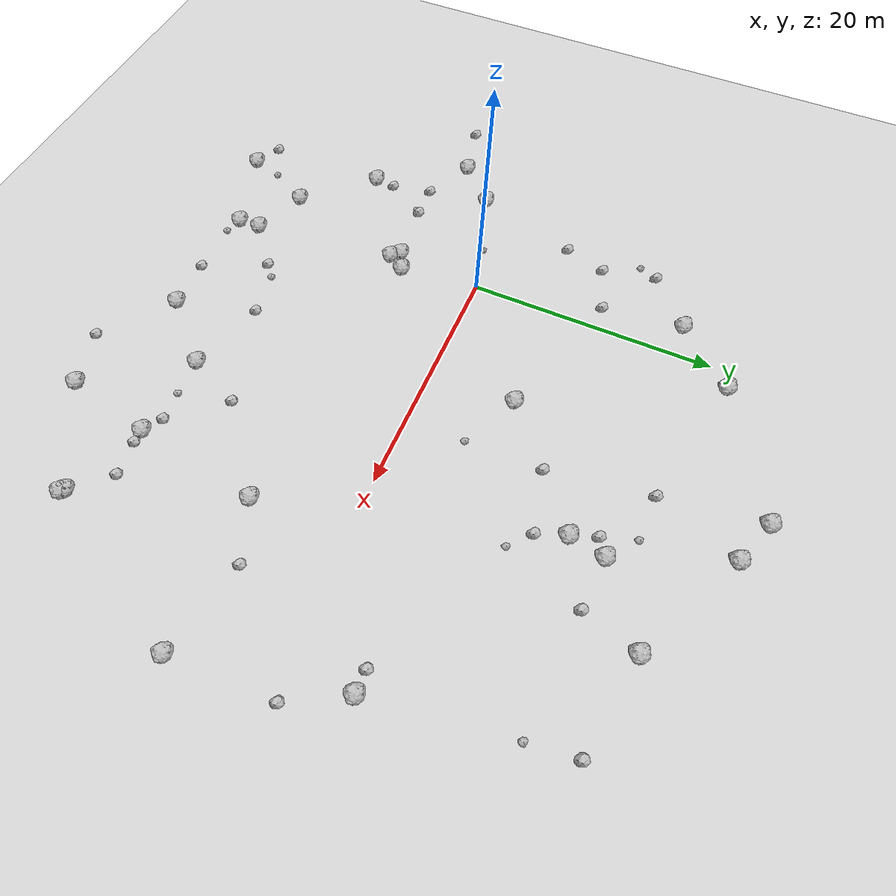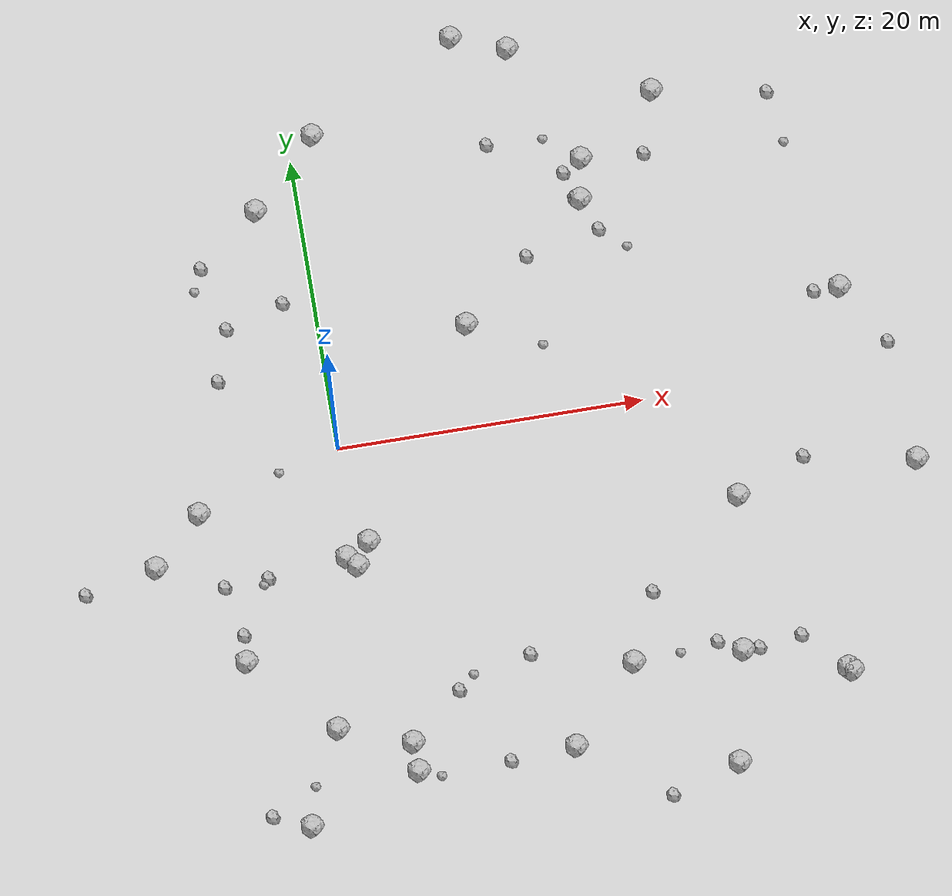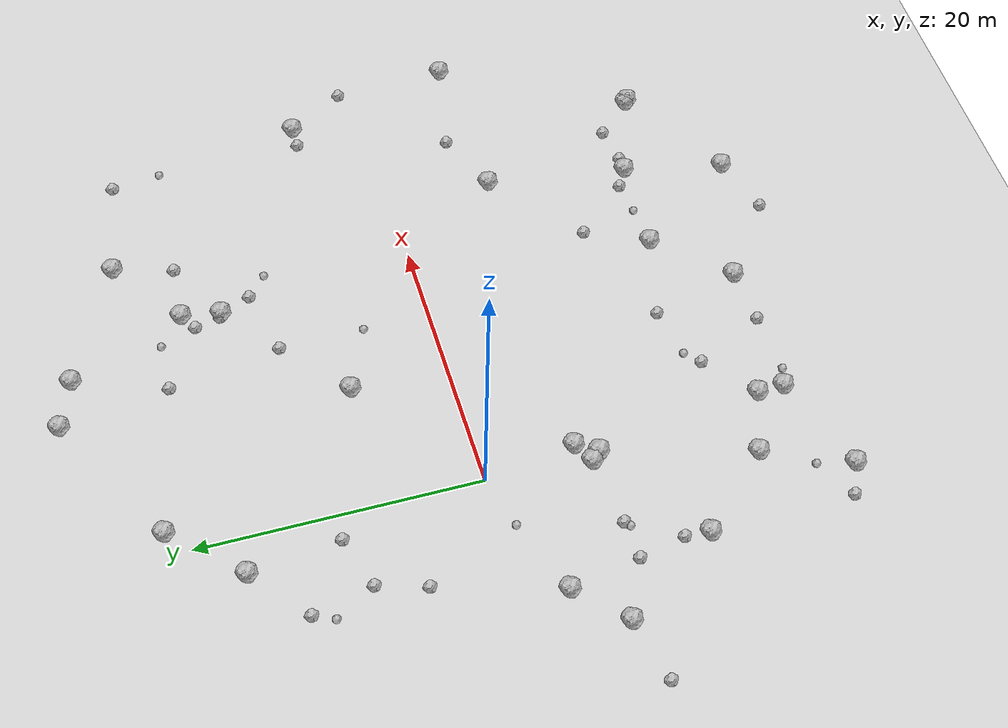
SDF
<sdf version="1.6">
 <world name="default">
  <include><uri>model://custom_ground</uri></include>
  <include><uri>model://sun</uri></include>
  <model name="rock1_0_0">
   <include><uri>model://rock1</uri><pose>0.9935185187853364 -6.503932943444923 0.5 0 0 0</pose></include>
  </model>
  <model name="rock1_0_1">
   <include><uri>model://rock1</uri><pose>36.758093230013216 -6.941084062376241 0.5 0 0 0</pose></include>
  </model>
  <model name="rock1_0_2">
   <include><uri>model://rock1</uri><pose>0.05145829908105526 -7.98412813386112 0.5 0 0 0</pose></include>
  </model>
  <model name="rock1_0_3">
   <include><uri>model://rock1</uri><pose>-2.7453775074032265 16.923458113375936 0.5 0 0 0</pose></include>
  </model>
  <model name="rock1_0_4">
   <include><uri>model://rock1</uri><pose>18.396231414767357 14.201627621543139 0.5 0 0 0</pose></include>
  </model>
  <model name="rock1_0_5">
   <include><uri>model://rock1</uri><pose>34.01812230619507 5.394185018060945 0.5 0 0 0</pose></include>
  </model>
  <model name="rock1_0_6">
   <include><uri>model://rock1</uri><pose>1.7370727873319112 -21.931574258012084 0.5 0 0 0</pose></include>
  </model>
  <model name="rock1_0_7">
   <include><uri>model://rock1</uri><pose>1.686179648115612 -20.035232182182654 0.5 0 0 0</pose></include>
  </model>
  <model name="rock1_0_8">
   <include><uri>model://rock1</uri><pose>18.912973151347877 16.987564073274086 0.5 0 0 0</pose></include>
  </model>
  <model name="rock1_0_9">
   <include><uri>model://rock1</uri><pose>11.84262653387811 26.806994615402616 0.5 0 0 0</pose></include>
  </model>
  <model name="rock1_0_10">
   <include><uri>model://rock1</uri><pose>11.83093446656165 -22.002242825853735 0.5 0 0 0</pose></include>
  </model>
  <model name="rock1_0_11">
   <include><uri>model://rock1</uri><pose>24.33388426134008 20.93147801118795 0.5 0 0 0</pose></include>
  </model>
  <model name="rock1_0_12">
   <include><uri>model://rock1</uri><pose>15.415270769079576 25.416421206683253 0.5 0 0 0</pose></include>
  </model>
  <model name="rock1_0_13">
   <include><uri>model://rock1</uri><pose>21.850337437310834 -24.754390922390836 0.5 0 0 0</pose></include>
  </model>
  <model name="rock1_0_14">
   <include><uri>model://rock1</uri><pose>-2.8841447516036034 -18.38125748219366 0.5 0 0 0</pose></include>
  </model>
  <model name="rock1_0_15">
   <include><uri>model://rock1</uri><pose>-7.942983325316881 -13.096045341482991 0.5 0 0 0</pose></include>
  </model>
  <model name="rock1_0_16">
   <include><uri>model://rock1</uri><pose>-5.48458424578126 -24.334589937606346 0.5 0 0 0</pose></include>
  </model>
  <model name="rock1_0_17">
   <include><uri>model://rock1</uri><pose>9.598328535303079 6.919934118916444 0.5 0 0 0</pose></include>
  </model>
  <model name="rock1_0_18">
   <include><uri>model://rock1</uri><pose>30.009805219220745 -20.046291285214508 0.5 0 0 0</pose></include>
  </model>
  <model name="rock1_0_19">
   <include><uri>model://rock1</uri><pose>-0.563832847708106 -7.312956350634192 0.5 0 0 0</pose></include>
  </model>
  <model name="rock1_0_20">
   <include><uri>model://rock1</uri><pose>29.806801564779427 -19.82549436107324 0.5 0 0 0</pose></include>
  </model>
  <model name="rock1_0_21">
   <include><uri>model://rock1</uri><pose>24.938658554413976 -7.440463109327901 0.5 0 0 0</pose></include>
  </model>
  <model name="rock1_0_22">
   <include><uri>model://rock1</uri><pose>16.384621273567255 -17.208731626027152 0.5 0 0 0</pose></include>
  </model>
  <model name="rock1_0_23">
   <include><uri>model://rock1</uri><pose>-12.720657431550443 -6.015691494433824 0.5 0 0 0</pose></include>
  </model>
  <model name="rock1_0_24">
   <include><uri>model://rock1</uri><pose>-9.489475196603772 -2.9012978600118764 0.5 0 0 0</pose></include>
  </model>
  <model name="rock1_0_25">
   <include><uri>model://rock1</uri><pose>1.7141970122254477 21.524658336492784 0.5 0 0 0</pose></include>
  </model>
  <model name="rock1_0_26">
   <include><uri>model://rock1</uri><pose>23.404421645676322 -17.59424791089056 0.5 0 0 0</pose></include>
  </model>
  <model name="rock2_0_0">
   <include><uri>model://rock2</uri><pose>19.211248343623666 11.977067162448385 0.3 0 0 0</pose></include>
  </model>
  <model name="rock2_0_1">
   <include><uri>model://rock2</uri><pose>17.581698931213353 16.212446086927564 0.3 0 0 0</pose></include>
  </model>
  <model name="rock2_0_2">
   <include><uri>model://rock2</uri><pose>-6.9559122397188755 5.7580406617748 0.3 0 0 0</pose></include>
  </model>
  <model name="rock2_0_3">
   <include><uri>model://rock2</uri><pose>17.315863838376316 -26.136937540721163 0.3 0 0 0</pose></include>
  </model>
  <model name="rock2_0_4">
   <include><uri>model://rock2</uri><pose>-5.740805090324439 -7.850220585391114 0.3 0 0 0</pose></include>
  </model>
  <model name="rock2_0_5">
   <include><uri>model://rock2</uri><pose>29.537958972303223 -5.532141630352495 0.3 0 0 0</pose></include>
  </model>
  <model name="rock2_0_6">
   <include><uri>model://rock2</uri><pose>36.40509371789391 1.2189443202846881 0.3 0 0 0</pose></include>
  </model>
  <model name="rock2_0_7">
   <include><uri>model://rock2</uri><pose>-17.456889790939584 -7.021497225326939 0.3 0 0 0</pose></include>
  </model>
  <model name="rock2_0_8">
   <include><uri>model://rock2</uri><pose>12.927838791504001 18.98520619321514 0.3 0 0 0</pose></include>
  </model>
  <model name="rock2_0_9">
   <include><uri>model://rock2</uri><pose>31.810134778722592 19.589451650094958 0.3 0 0 0</pose></include>
  </model>
  <model name="rock2_0_10">
   <include><uri>model://rock2</uri><pose>-5.892142689305999 9.195330199586394 0.3 0 0 0</pose></include>
  </model>
  <model name="rock2_0_11">
   <include><uri>model://rock2</uri><pose>7.591984622178163 -22.247086829618976 0.3 0 0 0</pose></include>
  </model>
  <model name="rock2_0_12">
   <include><uri>model://rock2</uri><pose>14.220608014251262 10.896580066515014 0.3 0 0 0</pose></include>
  </model>
  <model name="rock2_0_13">
   <include><uri>model://rock2</uri><pose>17.995212935071095 14.344292277809657 0.3 0 0 0</pose></include>
  </model>
  <model name="rock2_0_14">
   <include><uri>model://rock2</uri><pose>-6.9153188108519 13.59217624955815 0.3 0 0 0</pose></include>
  </model>
  <model name="rock2_0_15">
   <include><uri>model://rock2</uri><pose>32.29679647503118 5.4008700155324405 0.3 0 0 0</pose></include>
  </model>
  <model name="rock2_0_16">
   <include><uri>model://rock2</uri><pose>-8.59444163791311 -7.992750672687762 0.3 0 0 0</pose></include>
  </model>
  <model name="rock2_0_17">
   <include><uri>model://rock2</uri><pose>21.87562615949919 -16.760012653168687 0.3 0 0 0</pose></include>
  </model>
  <model name="rock2_0_18">
   <include><uri>model://rock2</uri><pose>27.231810281958737 -17.221721151020894 0.3 0 0 0</pose></include>
  </model>
  <model name="rock2_0_19">
   <include><uri>model://rock2</uri><pose>9.949817665201934 -15.58163137736396 0.3 0 0 0</pose></include>
  </model>
  <model name="rock2_0_20">
   <include><uri>model://rock2</uri><pose>-7.861953998362839 -23.323092360625175 0.3 0 0 0</pose></include>
  </model>
  <model name="rock2_0_21">
   <include><uri>model://rock2</uri><pose>-7.857603389803094 -11.331764729230319 0.3 0 0 0</pose></include>
  </model>
  <model name="rock2_0_22">
   <include><uri>model://rock2</uri><pose>24.44913786291211 -17.595516499051982 0.3 0 0 0</pose></include>
  </model>
  <model name="rock2_0_23">
   <include><uri>model://rock2</uri><pose>5.101124668397524 -17.16001354695869 0.3 0 0 0</pose></include>
  </model>
  <model name="rock2_0_24">
   <include><uri>model://rock2</uri><pose>23.03403276462499 16.68440478486353 0.3 0 0 0</pose></include>
  </model>
  <model name="rock2_0_25">
   <include><uri>model://rock2</uri><pose>-2.009678355146324 10.361864028304694 0.3 0 0 0</pose></include>
  </model>
  <model name="rock2_0_26">
   <include><uri>model://rock2</uri><pose>18.374447902361688 -12.832816053307774 0.3 0 0 0</pose></include>
  </model>
  <model name="rock3_0_0">
   <include><uri>model://rock3</uri><pose>-7.570488425720265 12.08515454729423 0.2 0 0 0</pose></include>
  </model>
  <model name="rock3_0_1">
   <include><uri>model://rock3</uri><pose>6.16618811341317 -16.271558035384636 0.2 0 0 0</pose></include>
  </model>
  <model name="rock3_0_2">
   <include><uri>model://rock3</uri><pose>3.0830619804530315 -22.475706322920523 0.2 0 0 0</pose></include>
  </model>
  <model name="rock3_0_3">
   <include><uri>model://rock3</uri><pose>32.27551462987189 15.95590398239979 0.2 0 0 0</pose></include>
  </model>
  <model name="rock3_0_4">
   <include><uri>model://rock3</uri><pose>16.63644793770034 18.798529536393453 0.2 0 0 0</pose></include>
  </model>
  <model name="rock3_0_5">
   <include><uri>model://rock3</uri><pose>20.842561354974947 10.511127970011685 0.2 0 0 0</pose></include>
  </model>
  <model name="rock3_0_6">
   <include><uri>model://rock3</uri><pose>-4.888778957872951 -21.834630259262084 0.2 0 0 0</pose></include>
  </model>
  <model name="rock3_0_7">
   <include><uri>model://rock3</uri><pose>-6.096281276102982 -8.223845503858978 0.2 0 0 0</pose></include>
  </model>
  <model name="rock3_0_8">
   <include><uri>model://rock3</uri><pose>19.414519082769516 -17.076978819866778 0.2 0 0 0</pose></include>
  </model>
  <model name="rock3_0_9">
   <include><uri>model://rock3</uri><pose>-4.0064503361425725 -0.9862866762400238 0.2 0 0 0</pose></include>
  </model>
  <model name="rock3_0_10">
   <include><uri>model://rock3</uri><pose>14.270397052646366 4.756402043196047 0.2 0 0 0</pose></include>
  </model>
 </world>
</sdf>
